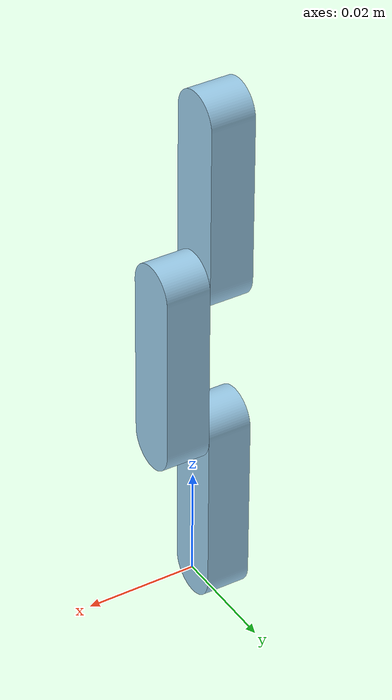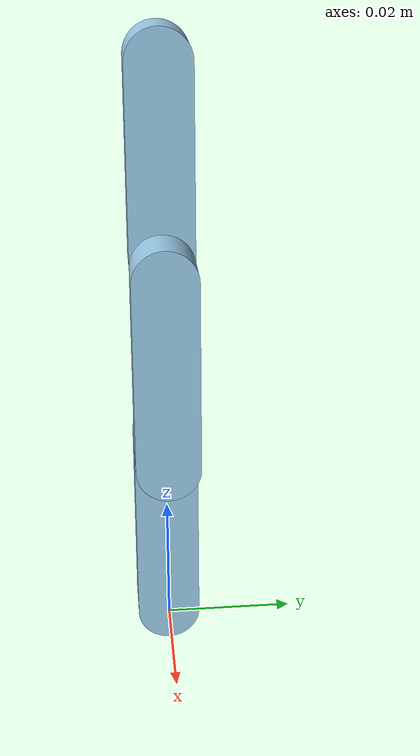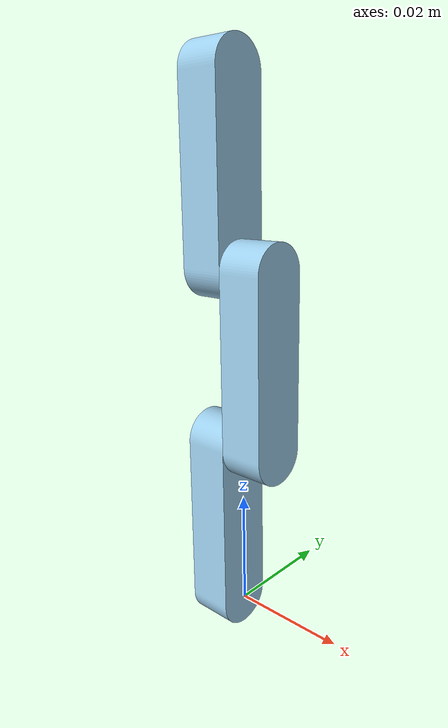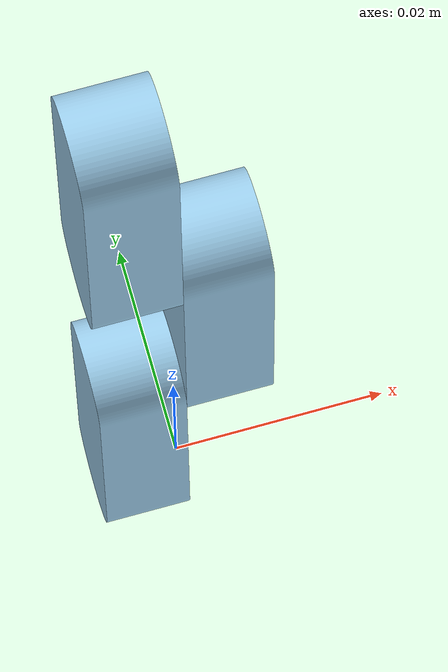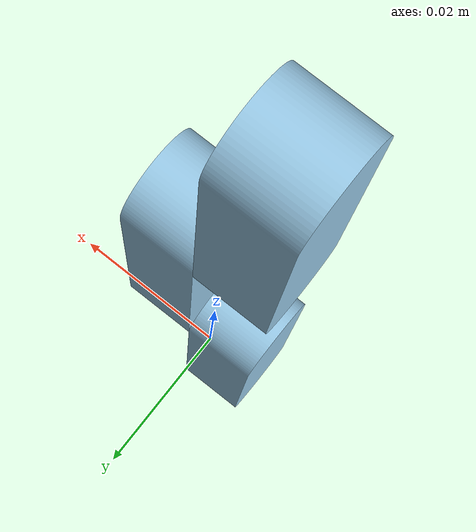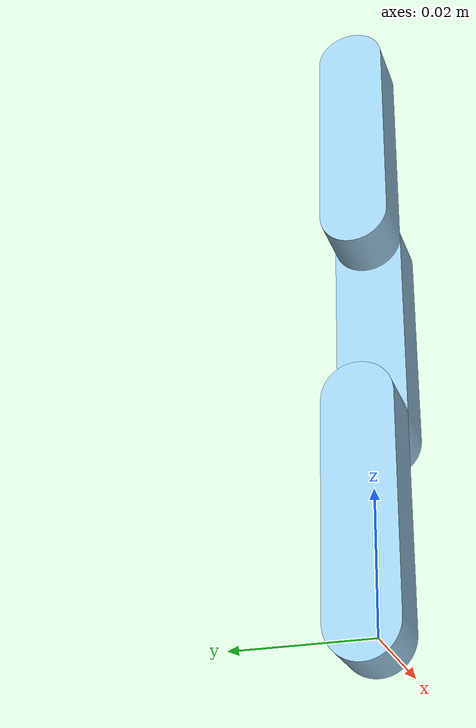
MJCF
<mujoco model="MuJoCo Model">
  <compiler angle="radian"/>

  <default>
    <geom type="mesh"/>
  </default>

  <asset>
    <mesh name="part_1" file="/Users/mohammadhamid/Mujoco/onshape_to_mjcf_ws/onshape-to-mjcf/examples/subassembly_group_feature/subassembly_group_feature/assets/part_1.stl"/>
  </asset>

  <worldbody>
    <body name="base">
      <geom quat="0.5 0.5 0.5 -0.5" rgba="0.615686 0.811765 0.929412 1" mesh="part_1"/>
      <body name="part_1" pos="0 0 0.03" quat="0.707107 0 -0.707107 0">
        <joint name="Revolute 11" pos="0 0 0" axis="0 0 1" range="-3.14 3.14"/>
        <geom pos="0.06 0 0" quat="0.707107 -0.707107 0 0" rgba="0.615686 0.811765 0.929412 1" mesh="part_1"/>
        <geom pos="0.03 0 -0.008" quat="0.707107 -0.707107 0 0" rgba="0.615686 0.811765 0.929412 1" mesh="part_1"/>
      </body>
    </body>
  </worldbody>
</mujoco>
